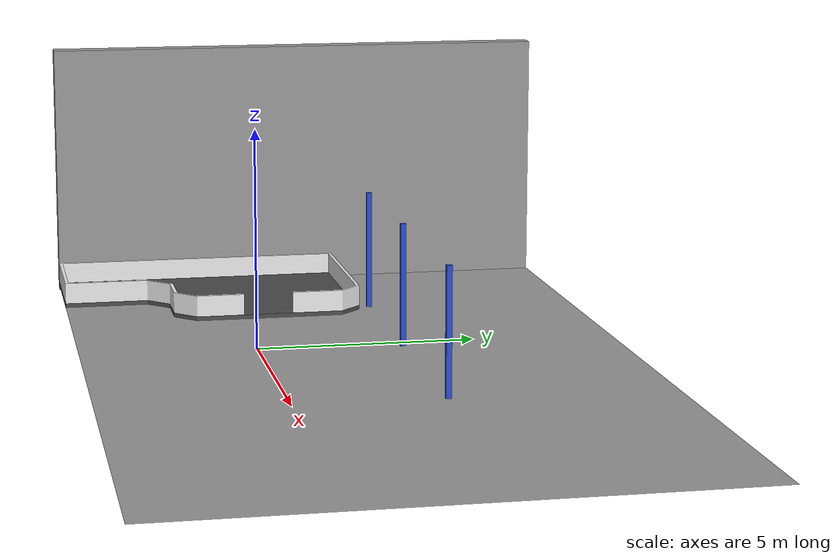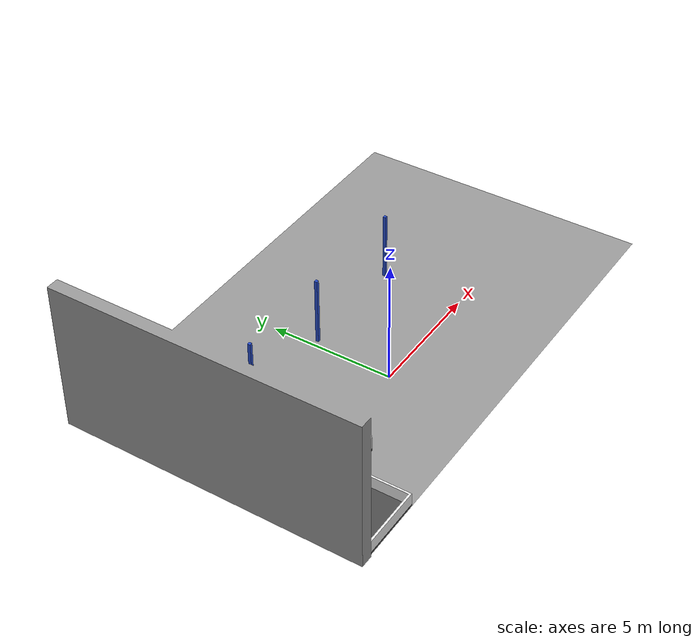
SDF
<?xml version="1.0"?>
<sdf version='1.4'>
  <model name='m_walls_gerard_bauzil'>
      <link name='Walls_Gerard_Bauzil'>
        <collision name='Walls_Gerard_Bauzil_Collision'>
          <geometry>
            <mesh>
              <uri>model://gerard_bauzil_walls/meshes/gerard_bauzil_walls_v2.dae</uri>
            </mesh>
          </geometry>
          <pose>0.000000 0.000000 0.0000 0.000000 0.000000 0.000000</pose>
          <surface>
            <bounce/>
            <friction>
              <ode/>
            </friction>
            <contact>
              <ode/>
            </contact>
          </surface>
        </collision>
        <visual name='Walls_Gerard_Bauzil_Visual'>
          <pose>0.000000 0.000000 0.0000 0.000000 0.000000 0.000000</pose>
          <geometry>
            <mesh>
              <uri>model://gerard_bauzil_walls/meshes/gerard_bauzil_walls_v2.dae</uri>
            </mesh>
          </geometry>
          <material>
            <script>
              <uri>file://media/materials/scripts/gazebo.material</uri>
              <name>Gazebo/Grey</name>
            </script>
          </material>
        </visual>
        <velocity_decay>
          <linear>0.000000</linear>
          <angular>0.000000</angular>
        </velocity_decay>
        <pose>0.000 0.00 0.000000 0.000000 0.000000 0.00</pose>
        <self_collide>0</self_collide>
        <kinematic>0</kinematic>
        <gravity>1</gravity>
      </link>
     <link name='Estrade_Gerard_Bauzil'>
        <collision name='Estrade_Gerard_Bauzil_Collision'>
          <geometry>
            <mesh>
              <uri>model://gerard_bauzil_walls/meshes/estrade_v2.dae</uri>
            </mesh>
          </geometry>
          <pose>0.000000 0.000000 0.0000 0.000000 0.000000 0.000000</pose>
          <surface>
            <bounce/>
            <friction>
              <ode/>
            </friction>
            <contact>
              <ode/>
            </contact>
          </surface>
        </collision>
        <visual name='Estrade_Gerard_Bauzil_Visual'>
          <pose>0.000000 0.000000 0.0000 0.000000 0.000000 0.000000</pose>
          <geometry>
            <mesh>
              <uri>model://gerard_bauzil_walls/meshes/estrade_v2.dae</uri>
            </mesh>
          </geometry>
          <material>
            <script>
              <uri>file://media/materials/scripts/gazebo.material</uri>
              <name>Gazebo/DarkGrey</name>
            </script>
          </material>
        </visual>
        <velocity_decay>
          <linear>0.000000</linear>
          <angular>0.000000</angular>
        </velocity_decay>
        <pose>0.000 0.00 0.000000 0.000000 0.000000 0.00</pose>
        <self_collide>0</self_collide>
        <kinematic>0</kinematic>
        <gravity>1</gravity>
      </link>
     <link name='Barrier_Gerard_Bauzil'>
        <collision name='Barrier_Gerard_Bauzil_Collision'>
          <geometry>
            <mesh>
              <uri>model://gerard_bauzil_walls/meshes/barrier_v2.dae</uri>
            </mesh>
          </geometry>
          <pose>0.000000 0.000000 0.0000 0.000000 0.000000 0.000000</pose>
          <surface>
            <bounce/>
            <friction>
              <ode/>
            </friction>
            <contact>
              <ode/>
            </contact>
          </surface>
        </collision>
        <visual name='Barrier_Gerard_Bauzil_Visual'>
          <pose>0.000000 0.000000 0.0000 0.000000 0.000000 0.000000</pose>
          <geometry>
            <mesh>
              <uri>model://gerard_bauzil_walls/meshes/barrier_v2.dae</uri>
            </mesh>
          </geometry>
          <material>
            <script>
              <uri>file://media/materials/scripts/gazebo.material</uri>
              <name>Gazebo/White</name>
            </script>
          </material>
        </visual>
        <velocity_decay>
          <linear>0.000000</linear>
          <angular>0.000000</angular>
        </velocity_decay>
        <pose>0.000 0.00 0.000000 0.000000 0.000000 0.00</pose>
        <self_collide>0</self_collide>
        <kinematic>0</kinematic>
        <gravity>1</gravity>
      </link>
     <link name='Columns_Gerard_Bauzil'>
        <collision name='Columns_Gerard_Bauzil_Collision'>
          <geometry>
            <mesh>
              <uri>model://gerard_bauzil_walls/meshes/blue-column_v2.dae</uri>
            </mesh>
          </geometry>
          <pose>0.3 3.3 0.0 0.0 0.0 0.0</pose>
          <surface>
            <bounce/>
            <friction>
              <ode/>
            </friction>
            <contact>
              <ode/>
            </contact>
          </surface>
        </collision>
        <visual name='Columns_Gerard_Bauzil_Visual'>
          <pose>0.3 3.3 0.0 0.0 0.0 0.0</pose>
          <geometry>
            <mesh>
              <uri>model://gerard_bauzil_walls/meshes/blue-column_v2.dae</uri>
            </mesh>
          </geometry>
          <material>
            <script>
              <uri>file://media/materials/scripts/gazebo.material</uri>
              <name>Gazebo/Blue</name>
            </script>
          </material>
        </visual>
        <velocity_decay>
          <linear>0.000000</linear>
          <angular>0.000000</angular>
        </velocity_decay>
        <pose>0.0 0.0 0.0 0.0 0.0 0.0</pose>
        <self_collide>0</self_collide>
        <kinematic>0</kinematic>
        <gravity>1</gravity>
      </link>
      <link name='Columns_Gerard_Bauzil_2'>
        <collision name='Columns_Gerard_Bauzil_Collision_2'>
          <geometry>
            <mesh>
              <uri>model://gerard_bauzil_walls/meshes/blue-column_v2.dae</uri>
            </mesh>
          </geometry>
          <pose>-3.795 3.3 0.0 0.0 0.0 0.0</pose>
          <surface>
            <bounce/>
            <friction>
              <ode/>
            </friction>
            <contact>
              <ode/>
            </contact>
          </surface>
        </collision>
        <visual name='Columns_Gerard_Bauzil_Visual_2'>
          <pose>-3.795 3.3 0.0 0.0 0.0 0.0</pose>
          <geometry>
            <mesh>
              <uri>model://gerard_bauzil_walls/meshes/blue-column_v2.dae</uri>
            </mesh>
          </geometry>
          <material>
            <script>
              <uri>file://media/materials/scripts/gazebo.material</uri>
              <name>Gazebo/Blue</name>
            </script>
          </material>
        </visual>
        <velocity_decay>
          <linear>0.0</linear>
          <angular>0.0</angular>
        </velocity_decay>
        <pose>0.0 0.0 0.0 0.0 0.0 0.0</pose>
        <self_collide>0</self_collide>
        <kinematic>0</kinematic>
        <gravity>1</gravity>
      </link>
      <link name='Columns_Gerard_Bauzil_3'>
        <collision name='Columns_Gerard_Bauzil_Collision_3'>
          <geometry>
            <mesh>
              <uri>model://gerard_bauzil_walls/meshes/blue-column_v2.dae</uri>
            </mesh>
          </geometry>
          <pose>4.96 3.3 0.0 0.0 0.0 0.0</pose>
          <surface>
            <bounce/>
            <friction>
              <ode/>
            </friction>
            <contact>
              <ode/>
            </contact>
          </surface>
        </collision>
        <visual name='Columns_Gerard_Bauzil_Visual_3'>
          <pose>4.96 3.3 0.0 0.0 0.0 0.0</pose>
          <geometry>
            <mesh>
              <uri>model://gerard_bauzil_walls/meshes/blue-column_v2.dae</uri>
            </mesh>
          </geometry>
          <material>
            <script>
              <uri>file://media/materials/scripts/gazebo.material</uri>
              <name>Gazebo/Blue</name>
            </script>
          </material>
        </visual>
        <velocity_decay>
          <linear>0.0</linear>
          <angular>0.0</angular>
        </velocity_decay>
        <pose>0.0 0.0 0.0 0.0 0.0 0.0</pose>
        <self_collide>0</self_collide>
        <kinematic>0</kinematic>
        <gravity>1</gravity>
      </link>
      <static>1</static>
    </model>
</sdf>
